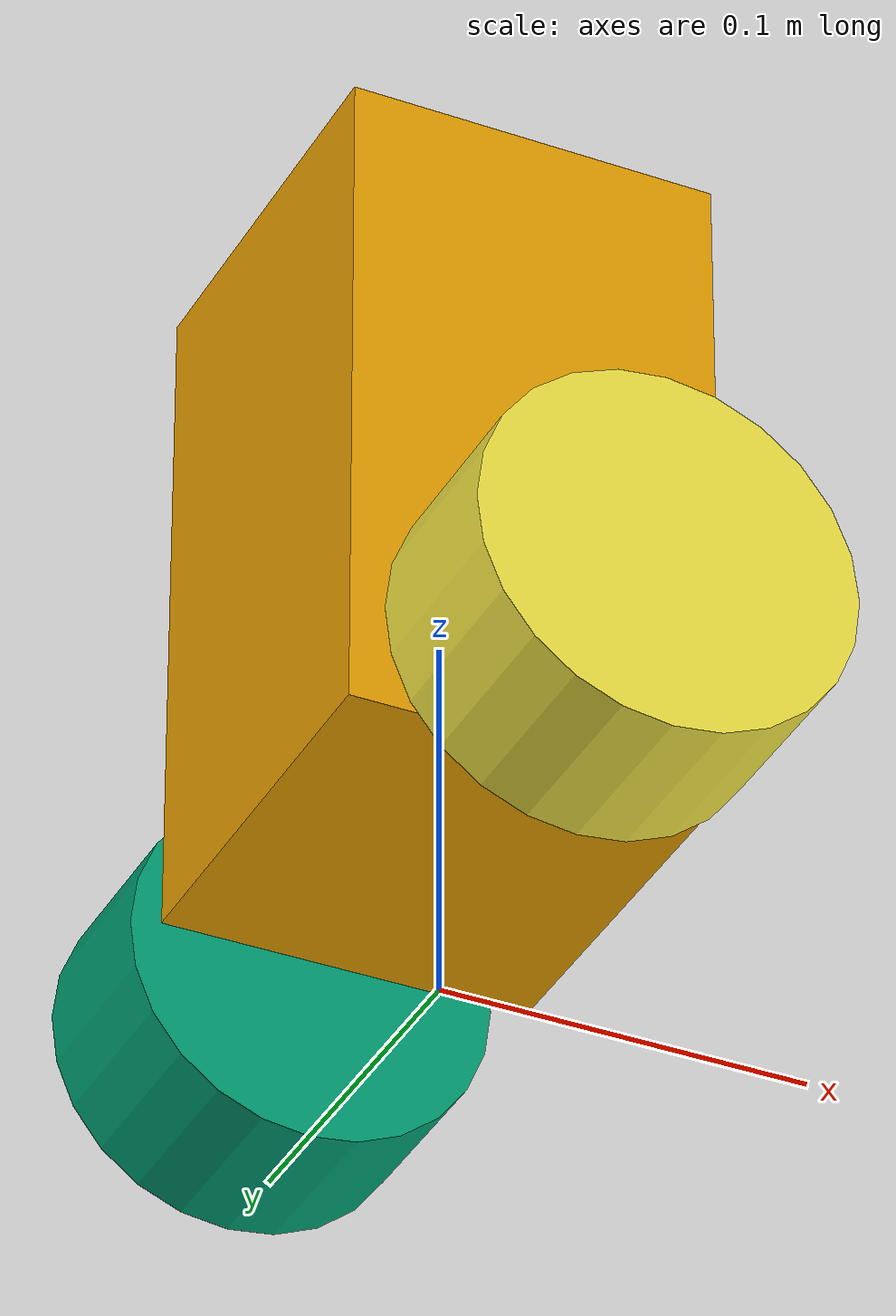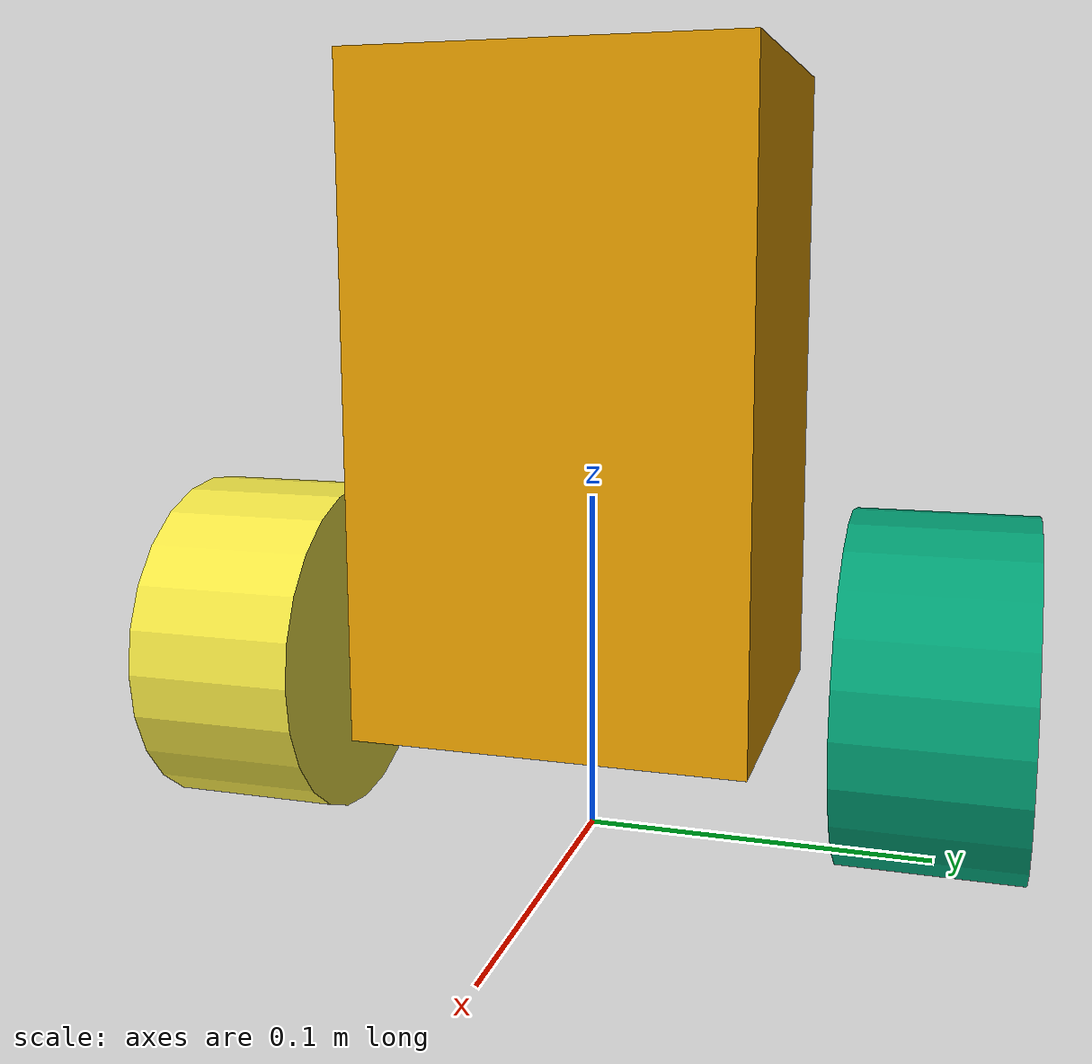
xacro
<?xml version="1.0"?>

<robot name="bobblebot" xmlns:xacro="http://www.ros.org/wiki/xacro">

  <xacro:include filename="$(find bobble_controllers)/test/xacro/bobble_chassis.urdf.xacro" />
  <xacro:include filename="$(find bobble_controllers)/test/xacro/bno055_imu.urdf.xacro" />
  <xacro:include filename="$(find bobble_controllers)/test/xacro/left_wheel.urdf.xacro" />
  <xacro:include filename="$(find bobble_controllers)/test/xacro/right_wheel.urdf.xacro" />

  <xacro:bobble_chassis>
  </xacro:bobble_chassis>
  <xacro:bno055_imu parent="bobble_chassis_link">
  </xacro:bno055_imu>
  <xacro:left_wheel parent="bobble_chassis_link">
  </xacro:left_wheel>
  <xacro:right_wheel parent="bobble_chassis_link">
  </xacro:right_wheel>

  <gazebo>
    <plugin name="gazebo_ros_control" filename="libgazebo_ros_control.so" >
      <robotNamespace>/bobble</robotNamespace>
      <robotSimType>gazebo_ros_control/DefaultRobotHWSim</robotSimType>
      <controlPeriod>0.002</controlPeriod>
      <legacyModeNS>false</legacyModeNS>
    </plugin>
    <plugin name='gazebo_ros_imu' filename='libhector_gazebo_ros_imu.so'>
      <alwaysOn>true</alwaysOn>
      <updateRate>200.0</updateRate>
      <bodyName>bno055_imu_link</bodyName>
      <topicName>/imu_bosch/data_raw</topicName>
      <gaussianNoise>0.02</gaussianNoise>
      <xyzOffsets>0 0 0</xyzOffsets>
      <rpyOffsets>0 0 0</rpyOffsets>
    </plugin>
  </gazebo>

</robot>

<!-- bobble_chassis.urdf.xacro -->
<robot xmlns:xacro="http://www.ros.org/wiki/xacro">

  <xacro:macro name="bobble_chassis">

	<link name="bobble_chassis_link">
  		<inertial>
	  		<origin xyz="0.0 0.0 0.180" rpy="0.0 0.0 0.0"/>
  	  		<mass value="2.043"/>
	  		<inertia ixx="0.03" ixy="0.0" ixz="0.0" iyy="0.03" iyz="0.0" izz="0.03"/>
		</inertial>
		<visual>
	  		<origin xyz="0.0 0.0 0.130" rpy="0.0 0.0 0.0"/>
            <geometry>
                <box size="0.1 0.11 0.185"/>
            </geometry>
   		</visual>
		<collision>
	  		<origin xyz="0.0 0.0 0.130" rpy="0.0 0.0 0.0"/>
            <geometry>
              <box size="0.1 0.11 0.185" />
            </geometry>
			<contact_coefficients kd="1.0" kp="1000.0" mu="0"/>
		</collision>
	</link>

	<gazebo reference="bobble_chassis_link">
		<selfCollide>false</selfCollide>
	</gazebo>

	</xacro:macro>

</robot>

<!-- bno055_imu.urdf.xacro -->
<robot xmlns:xacro="http://www.ros.org/wiki/xacro">

  <xacro:macro name="bno055_imu" params="parent">

	<link name="bno055_imu_link">
		<inertial>
			<mass value="0.001"/>
			<inertia ixx="0.0001" ixy="0.0" ixz="0.0" iyy="0.0001" iyz="0.0" izz="0.0001"/>
		</inertial>
		<visual>
			<origin xyz="0.0 0.0 0.129" rpy="0.0 0.0 0.0"/>
			<geometry name="bno055_imu_link_visual">
              <box size="0.001 0.001 0.001" />
            </geometry>
  		</visual>
		<collision>
			<origin xyz="0.0 0.0 0.129" rpy="0.0 0.0 0.0"/>
            <geometry>
              <box size="0.001 0.001 0.001" />
            </geometry>
			<contact_coefficients kd="1.0" kp="1000.0" mu="0"/>
		</collision>
	</link>

	<gazebo reference="bno055_imu_link">
		<selfCollide>false</selfCollide>
	</gazebo>

	<joint name="bno055_imu_joint" type="fixed">
		<parent link="${parent}"/>
		<child link="bno055_imu_link"/>
		<origin rpy="0 0 0" xyz="0.0 0.0 0.0"/>
		<axis xyz="0 1 0"/>
	</joint>

  </xacro:macro>

</robot>

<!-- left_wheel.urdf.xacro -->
<robot xmlns:xacro="http://www.ros.org/wiki/xacro">

  <xacro:macro name="left_wheel" params="parent">

	<link name="left_wheel_link">
		<inertial>
			<mass value="0.084"/>
			<inertia ixx="0.00035" ixy="0.0" ixz="0.0" iyy="0.00035" iyz="0.0" izz="0.00035"/>
		</inertial>
		<visual>
			<origin xyz="0.0 0.0 0.0" rpy="0.0 1.5707 1.5707"/>
			<geometry name="left_wheel_link_visual">
              <cylinder radius="0.05" length="0.05"/>
			</geometry>
  		</visual>
		<collision>
			<origin xyz="0.0 0.0 0.0" rpy="0.0 1.5707 1.5707"/>
            <geometry>
              <cylinder radius="0.05" length="0.05" />
            </geometry>
			<contact_coefficients kd="1.0" kp="1000.0" mu="0"/>
		</collision>
	</link>

	<gazebo reference="left_wheel_link">
		<selfCollide>false</selfCollide>
	</gazebo>

	<joint name="left_wheel_hinge" type="continuous">
		<parent link="${parent}"/>
		<child link="left_wheel_link"/>
		<origin rpy="0 0 0" xyz="0.0 0.1 0.05"/>
		<axis xyz="0 1 0"/>
    	<dynamics damping="0.0" friction="0.0"/>
	</joint>

	<transmission name="left_wheel_transmission">
		<type>transmission_interface/SimpleTransmission"</type>
		<joint name="left_wheel_hinge">
			<hardwareInterface>hardware_interface/EffortJointInterface</hardwareInterface>
		</joint>
		<actuator name="left_wheel_motor">
			<hardwareInterface>hardware_interface/EffortJointInterface</hardwareInterface>
			<mechanicalReduction>1</mechanicalReduction>
		</actuator>
	</transmission>

  </xacro:macro>

</robot>

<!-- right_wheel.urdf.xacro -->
<robot xmlns:xacro="http://www.ros.org/wiki/xacro">

  <xacro:macro name="right_wheel" params="parent">

	<link name="right_wheel_link">
		<inertial>
			<mass value="0.084"/>
			<inertia ixx="0.00035" ixy="0.0" ixz="0.0" iyy="0.00035" iyz="0.0" izz="0.00035"/>
		</inertial>
		<visual>
			<origin xyz="0.0 0.0 0.0" rpy="0.0 1.5707 -1.5707"/>
			<geometry name="right_wheel_link_visual">
              <cylinder radius="0.05" length="0.05"/>
			</geometry>
  		</visual>
		<collision>
			<origin xyz="0.0 0.0 0.0" rpy="0.0 1.5707 -1.5707"/>
            <geometry>
              <cylinder radius="0.05" length="0.05" />
            </geometry>
			<contact_coefficients kd="1.0" kp="1000.0" mu="0"/>
		</collision>
	</link>

	<gazebo reference="right_wheel_link">
		<selfCollide>false</selfCollide>
	</gazebo>

	<joint name="right_wheel_hinge" type="continuous">
		<parent link="${parent}"/>
		<child link="right_wheel_link"/>
		<origin rpy="0 0 0" xyz="0.0 -0.1 0.05"/>
		<axis xyz="0 1 0"/>
		<dynamics damping="0.0" friction="0.0"/>
	</joint>

	<transmission name="right_wheel_transmission">
		<type>transmission_interface/SimpleTransmission"</type>
		<joint name="right_wheel_hinge">
			<hardwareInterface>hardware_interface/EffortJointInterface</hardwareInterface>
		</joint>
		<actuator name="right_wheel_motor">
			<hardwareInterface>hardware_interface/EffortJointInterface</hardwareInterface>
			<mechanicalReduction>1</mechanicalReduction>
		</actuator>
	</transmission>

  </xacro:macro>

</robot>
